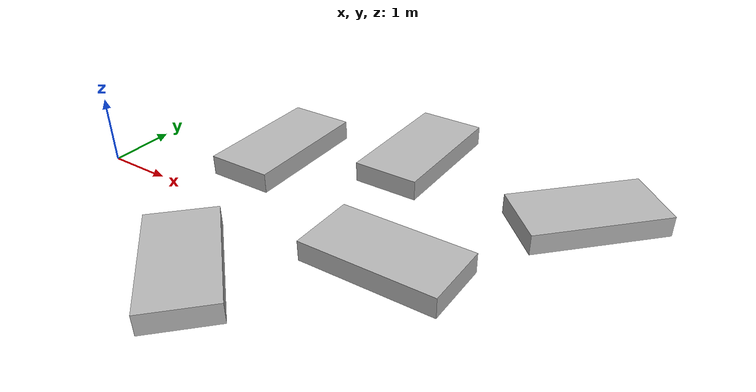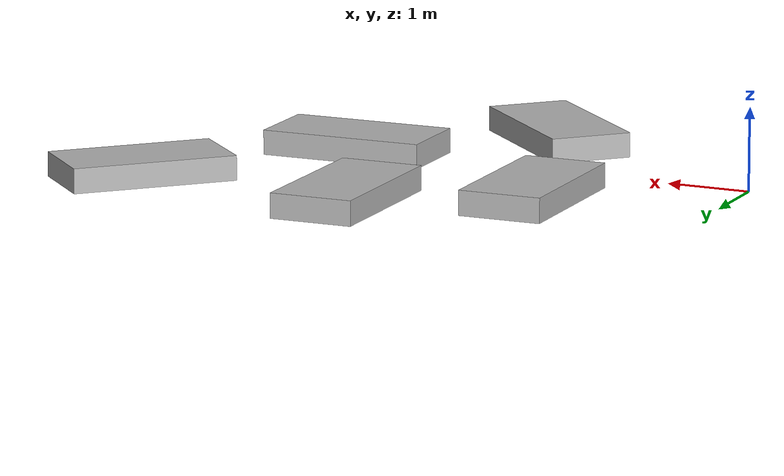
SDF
<?xml version="1.0"?>
<sdf version="1.4">

  <model name="multiple_steps">
    <static>true</static>
    <pose>0.5 0 0 0 0 0</pose>

    <link name='step_1'>
      <pose>1.6 1.5 0.15 0 0 0</pose>
      <collision name='collision'>
        <geometry>
          <box>
            <size>1 2 0.3</size>
          </box>
        </geometry>
      </collision>
      <visual name='visual'>
        <geometry>
          <box>
            <size>1 2 0.3</size>
          </box>
        </geometry>
      </visual>
    </link>

    <link name='step_2'>
      <pose>2.5 -1.5 0.15 0 0 0.78539</pose>
      <collision name='collision'>
        <geometry>
          <box>
            <size>1 2 0.3</size>
          </box>
        </geometry>
      </collision>
      <visual name='visual'>
        <geometry>
          <box>
            <size>1 2 0.3</size>
          </box>
        </geometry>
      </visual>
    </link>

    <link name='step_3'>
      <pose>4.5 0.0 0.15 0 0 1.570796</pose>
      <collision name='collision'>
        <geometry>
          <box>
            <size>1 2 0.3</size>
          </box>
        </geometry>
      </collision>
      <visual name='visual'>
        <geometry>
          <box>
            <size>1 2 0.3</size>
          </box>
        </geometry>
      </visual>
    </link>

    <link name='step_4'>
      <pose>3.5 2.5 0.15 0 0 0</pose>
      <collision name='collision'>
        <geometry>
          <box>
            <size>1 2 0.3</size>
          </box>
        </geometry>
      </collision>
      <visual name='visual'>
        <geometry>
          <box>
            <size>1 2 0.3</size>
          </box>
        </geometry>
      </visual>
    </link>

    <link name='step_5'>
      <pose>6.25 2.25 0.15 0 0 -0.78539</pose>
      <collision name='collision'>
        <geometry>
          <box>
            <size>1 2 0.3</size>
          </box>
        </geometry>
      </collision>
      <visual name='visual'>
        <geometry>
          <box>
            <size>1 2 0.3</size>
          </box>
        </geometry>
      </visual>
    </link>

  </model>
</sdf>
